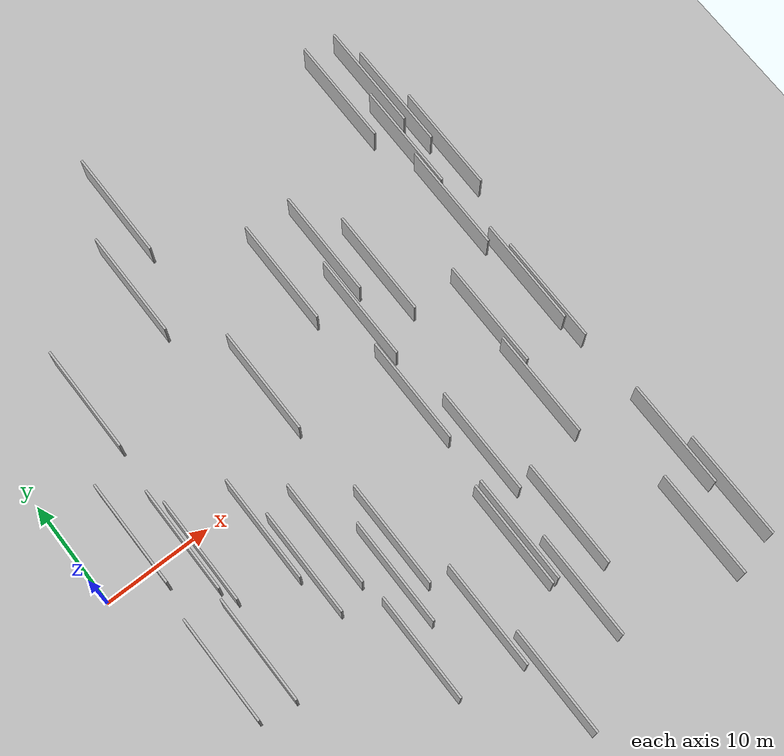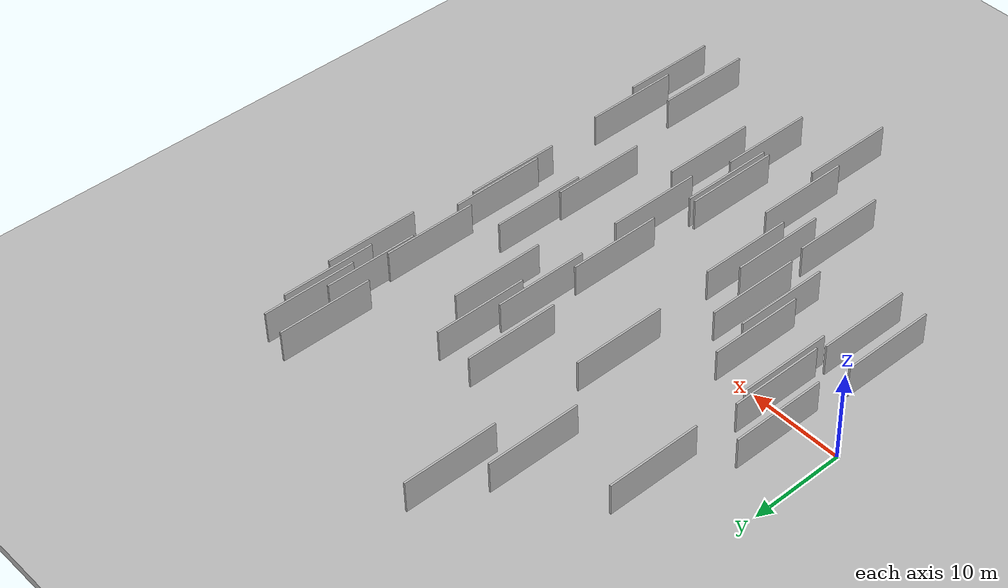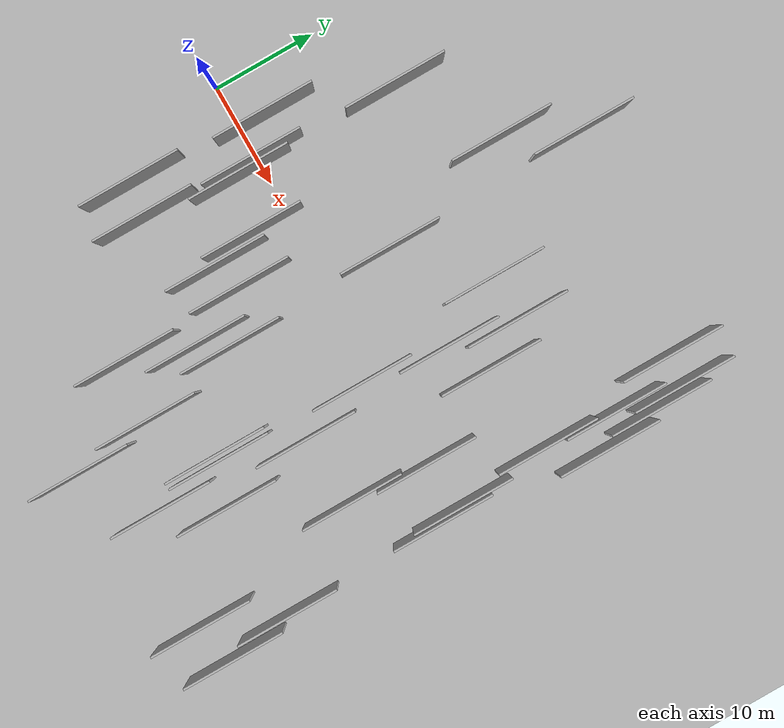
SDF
<?xml version="1.0" encoding="utf-8"?>

<sdf version="1.6">

   <world name="default">

      <gui fullscreen="0">

         <camera name="user_camera">

            <pose>-15 0 4.57585 0 0 0</pose>

            <view_controller>orbit</view_controller>

         </camera>

      </gui>

      <scene>

         <sky>

           <clouds>

             <speed>12</speed>

           </clouds>

         </sky>

         <ambient>0.4 0.4 0.4 1</ambient>

         <background>0.7 0.7 0.7 1</background>

         <shadows>1</shadows>

      </scene>

      <gravity>0 0 -9.8066</gravity>

      <magnetic_field>6e-06 2.3e-05 -4.2e-05</magnetic_field>

      <physics default="0" name="default_physics" type="ode">

         <ode>

            <solver>

               <type>quick</type>

               <iters>10</iters>

               <sor>1.0</sor>

               <use_dynamic_moi_rescaling>0</use_dynamic_moi_rescaling>

            </solver>

            <constraints>

               <cfm>0</cfm>

               <erp>0.2</erp>

               <contact_max_correcting_vel>100</contact_max_correcting_vel>

               <contact_surface_layer>0.001</contact_surface_layer>

            </constraints>

         </ode>

         <max_step_size>0.004</max_step_size>

         <real_time_factor>1</real_time_factor>

         <real_time_update_rate>250</real_time_update_rate>

      </physics>

      <light name="sun" type="directional">

         <cast_shadows>1</cast_shadows>

         <pose>0 0 10 0 0 0</pose>

         <diffuse>0.8 0.8 0.8 1</diffuse>

         <specular>0.2 0.2 0.2 1</specular>

         <attenuation>

            <range>1000</range>

            <constant>0.9</constant>

            <linear>0.01</linear>

            <quadratic>0.001</quadratic>

         </attenuation>

         <direction>-0.5 0.1 -0.9</direction>

      </light>

      <include>

         <name>ground_plane_1</name>

         <uri>model://HANNAS_ground_plane</uri>

         <pose>0 0 0  0 0 0</pose>

      </include>

      <include>

         <name>ground_plane_2</name>

         <uri>model://HANNAS_ground_plane</uri>

         <pose>100 0 0  0 0 0</pose>

      </include>

      <model name="HANNAS_wall_1">

         <static>1</static>

         <pose frame="">30.7414 6.5558 0.0 0.000000 0.000000 1.570796</pose>

         <link name="link">

            <pose frame="">0 0 2.00 0 0 0</pose>

            <collision name="collision">

               <geometry>

                  <box>

                     <size>10.00 0.2 4.00</size>

                  </box>

               </geometry>

               <max_contacts>10</max_contacts>

               <surface>

                  <contact>

                     <ode/>

                  </contact>

                  <bounce/>

                  <friction>

                     <torsional>

                        <ode/>

                     </torsional>

                     <ode/>

                  </friction>

               </surface>

            </collision>

            <visual name="visual">

               <cast_shadows>0</cast_shadows>

               <geometry>

                  <box>

                     <size>10.00 0.2 4.00</size>

                  </box>

               </geometry>

               <material>

                  <script>

                     <uri>model://HANNAS_wall/materials/scripts</uri>

                     <uri>model://HANNAS_wall/materials/textures</uri>

                     <name>vrc/HANNAS_wall</name>

                  </script>

               </material>

            </visual>

            <self_collide>0</self_collide>

            <enable_wind>0</enable_wind>

            <kinematic>0</kinematic>

         </link>

      </model>

      <model name="HANNAS_wall_2">

         <static>1</static>

         <pose frame="">17.5205 -18.7293 0.0 0.000000 0.000000 1.570796</pose>

         <link name="link">

            <pose frame="">0 0 2.00 0 0 0</pose>

            <collision name="collision">

               <geometry>

                  <box>

                     <size>10.00 0.2 4.00</size>

                  </box>

               </geometry>

               <max_contacts>10</max_contacts>

               <surface>

                  <contact>

                     <ode/>

                  </contact>

                  <bounce/>

                  <friction>

                     <torsional>

                        <ode/>

                     </torsional>

                     <ode/>

                  </friction>

               </surface>

            </collision>

            <visual name="visual">

               <cast_shadows>0</cast_shadows>

               <geometry>

                  <box>

                     <size>10.00 0.2 4.00</size>

                  </box>

               </geometry>

               <material>

                  <script>

                     <uri>model://HANNAS_wall/materials/scripts</uri>

                     <uri>model://HANNAS_wall/materials/textures</uri>

                     <name>vrc/HANNAS_wall</name>

                  </script>

               </material>

            </visual>

            <self_collide>0</self_collide>

            <enable_wind>0</enable_wind>

            <kinematic>0</kinematic>

         </link>

      </model>

      <model name="HANNAS_wall_3">

         <static>1</static>

         <pose frame="">43.6340 0.5578 0.0 0.000000 0.000000 1.570796</pose>

         <link name="link">

            <pose frame="">0 0 2.00 0 0 0</pose>

            <collision name="collision">

               <geometry>

                  <box>

                     <size>10.00 0.2 4.00</size>

                  </box>

               </geometry>

               <max_contacts>10</max_contacts>

               <surface>

                  <contact>

                     <ode/>

                  </contact>

                  <bounce/>

                  <friction>

                     <torsional>

                        <ode/>

                     </torsional>

                     <ode/>

                  </friction>

               </surface>

            </collision>

            <visual name="visual">

               <cast_shadows>0</cast_shadows>

               <geometry>

                  <box>

                     <size>10.00 0.2 4.00</size>

                  </box>

               </geometry>

               <material>

                  <script>

                     <uri>model://HANNAS_wall/materials/scripts</uri>

                     <uri>model://HANNAS_wall/materials/textures</uri>

                     <name>vrc/HANNAS_wall</name>

                  </script>

               </material>

            </visual>

            <self_collide>0</self_collide>

            <enable_wind>0</enable_wind>

            <kinematic>0</kinematic>

         </link>

      </model>

      <model name="HANNAS_wall_4">

         <static>1</static>

         <pose frame="">44.0097 -1.6854 0.0 0.000000 0.000000 1.570796</pose>

         <link name="link">

            <pose frame="">0 0 2.00 0 0 0</pose>

            <collision name="collision">

               <geometry>

                  <box>

                     <size>10.00 0.2 4.00</size>

                  </box>

               </geometry>

               <max_contacts>10</max_contacts>

               <surface>

                  <contact>

                     <ode/>

                  </contact>

                  <bounce/>

                  <friction>

                     <torsional>

                        <ode/>

                     </torsional>

                     <ode/>

                  </friction>

               </surface>

            </collision>

            <visual name="visual">

               <cast_shadows>0</cast_shadows>

               <geometry>

                  <box>

                     <size>10.00 0.2 4.00</size>

                  </box>

               </geometry>

               <material>

                  <script>

                     <uri>model://HANNAS_wall/materials/scripts</uri>

                     <uri>model://HANNAS_wall/materials/textures</uri>

                     <name>vrc/HANNAS_wall</name>

                  </script>

               </material>

            </visual>

            <self_collide>0</self_collide>

            <enable_wind>0</enable_wind>

            <kinematic>0</kinematic>

         </link>

      </model>

      <model name="HANNAS_wall_5">

         <static>1</static>

         <pose frame="">43.1147 16.3362 0.0 0.000000 0.000000 1.570796</pose>

         <link name="link">

            <pose frame="">0 0 2.00 0 0 0</pose>

            <collision name="collision">

               <geometry>

                  <box>

                     <size>10.00 0.2 4.00</size>

                  </box>

               </geometry>

               <max_contacts>10</max_contacts>

               <surface>

                  <contact>

                     <ode/>

                  </contact>

                  <bounce/>

                  <friction>

                     <torsional>

                        <ode/>

                     </torsional>

                     <ode/>

                  </friction>

               </surface>

            </collision>

            <visual name="visual">

               <cast_shadows>0</cast_shadows>

               <geometry>

                  <box>

                     <size>10.00 0.2 4.00</size>

                  </box>

               </geometry>

               <material>

                  <script>

                     <uri>model://HANNAS_wall/materials/scripts</uri>

                     <uri>model://HANNAS_wall/materials/textures</uri>

                     <name>vrc/HANNAS_wall</name>

                  </script>

               </material>

            </visual>

            <self_collide>0</self_collide>

            <enable_wind>0</enable_wind>

            <kinematic>0</kinematic>

         </link>

      </model>

      <model name="HANNAS_wall_6">

         <static>1</static>

         <pose frame="">24.2539 -27.2344 0.0 0.000000 0.000000 1.570796</pose>

         <link name="link">

            <pose frame="">0 0 2.00 0 0 0</pose>

            <collision name="collision">

               <geometry>

                  <box>

                     <size>10.00 0.2 4.00</size>

                  </box>

               </geometry>

               <max_contacts>10</max_contacts>

               <surface>

                  <contact>

                     <ode/>

                  </contact>

                  <bounce/>

                  <friction>

                     <torsional>

                        <ode/>

                     </torsional>

                     <ode/>

                  </friction>

               </surface>

            </collision>

            <visual name="visual">

               <cast_shadows>0</cast_shadows>

               <geometry>

                  <box>

                     <size>10.00 0.2 4.00</size>

                  </box>

               </geometry>

               <material>

                  <script>

                     <uri>model://HANNAS_wall/materials/scripts</uri>

                     <uri>model://HANNAS_wall/materials/textures</uri>

                     <name>vrc/HANNAS_wall</name>

                  </script>

               </material>

            </visual>

            <self_collide>0</self_collide>

            <enable_wind>0</enable_wind>

            <kinematic>0</kinematic>

         </link>

      </model>

      <model name="HANNAS_wall_7">

         <static>1</static>

         <pose frame="">13.3292 -3.4787 0.0 0.000000 0.000000 1.570796</pose>

         <link name="link">

            <pose frame="">0 0 2.00 0 0 0</pose>

            <collision name="collision">

               <geometry>

                  <box>

                     <size>10.00 0.2 4.00</size>

                  </box>

               </geometry>

               <max_contacts>10</max_contacts>

               <surface>

                  <contact>

                     <ode/>

                  </contact>

                  <bounce/>

                  <friction>

                     <torsional>

                        <ode/>

                     </torsional>

                     <ode/>

                  </friction>

               </surface>

            </collision>

            <visual name="visual">

               <cast_shadows>0</cast_shadows>

               <geometry>

                  <box>

                     <size>10.00 0.2 4.00</size>

                  </box>

               </geometry>

               <material>

                  <script>

                     <uri>model://HANNAS_wall/materials/scripts</uri>

                     <uri>model://HANNAS_wall/materials/textures</uri>

                     <name>vrc/HANNAS_wall</name>

                  </script>

               </material>

            </visual>

            <self_collide>0</self_collide>

            <enable_wind>0</enable_wind>

            <kinematic>0</kinematic>

         </link>

      </model>

      <model name="HANNAS_wall_8">

         <static>1</static>

         <pose frame="">41.1831 23.1403 0.0 0.000000 0.000000 1.570796</pose>

         <link name="link">

            <pose frame="">0 0 2.00 0 0 0</pose>

            <collision name="collision">

               <geometry>

                  <box>

                     <size>10.00 0.2 4.00</size>

                  </box>

               </geometry>

               <max_contacts>10</max_contacts>

               <surface>

                  <contact>

                     <ode/>

                  </contact>

                  <bounce/>

                  <friction>

                     <torsional>

                        <ode/>

                     </torsional>

                     <ode/>

                  </friction>

               </surface>

            </collision>

            <visual name="visual">

               <cast_shadows>0</cast_shadows>

               <geometry>

                  <box>

                     <size>10.00 0.2 4.00</size>

                  </box>

               </geometry>

               <material>

                  <script>

                     <uri>model://HANNAS_wall/materials/scripts</uri>

                     <uri>model://HANNAS_wall/materials/textures</uri>

                     <name>vrc/HANNAS_wall</name>

                  </script>

               </material>

            </visual>

            <self_collide>0</self_collide>

            <enable_wind>0</enable_wind>

            <kinematic>0</kinematic>

         </link>

      </model>

      <model name="HANNAS_wall_9">

         <static>1</static>

         <pose frame="">29.8172 -1.7241 0.0 0.000000 0.000000 1.570796</pose>

         <link name="link">

            <pose frame="">0 0 2.00 0 0 0</pose>

            <collision name="collision">

               <geometry>

                  <box>

                     <size>10.00 0.2 4.00</size>

                  </box>

               </geometry>

               <max_contacts>10</max_contacts>

               <surface>

                  <contact>

                     <ode/>

                  </contact>

                  <bounce/>

                  <friction>

                     <torsional>

                        <ode/>

                     </torsional>

                     <ode/>

                  </friction>

               </surface>

            </collision>

            <visual name="visual">

               <cast_shadows>0</cast_shadows>

               <geometry>

                  <box>

                     <size>10.00 0.2 4.00</size>

                  </box>

               </geometry>

               <material>

                  <script>

                     <uri>model://HANNAS_wall/materials/scripts</uri>

                     <uri>model://HANNAS_wall/materials/textures</uri>

                     <name>vrc/HANNAS_wall</name>

                  </script>

               </material>

            </visual>

            <self_collide>0</self_collide>

            <enable_wind>0</enable_wind>

            <kinematic>0</kinematic>

         </link>

      </model>

      <model name="HANNAS_wall_10">

         <static>1</static>

         <pose frame="">38.4385 -7.6919 0.0 0.000000 0.000000 1.570796</pose>

         <link name="link">

            <pose frame="">0 0 2.00 0 0 0</pose>

            <collision name="collision">

               <geometry>

                  <box>

                     <size>10.00 0.2 4.00</size>

                  </box>

               </geometry>

               <max_contacts>10</max_contacts>

               <surface>

                  <contact>

                     <ode/>

                  </contact>

                  <bounce/>

                  <friction>

                     <torsional>

                        <ode/>

                     </torsional>

                     <ode/>

                  </friction>

               </surface>

            </collision>

            <visual name="visual">

               <cast_shadows>0</cast_shadows>

               <geometry>

                  <box>

                     <size>10.00 0.2 4.00</size>

                  </box>

               </geometry>

               <material>

                  <script>

                     <uri>model://HANNAS_wall/materials/scripts</uri>

                     <uri>model://HANNAS_wall/materials/textures</uri>

                     <name>vrc/HANNAS_wall</name>

                  </script>

               </material>

            </visual>

            <self_collide>0</self_collide>

            <enable_wind>0</enable_wind>

            <kinematic>0</kinematic>

         </link>

      </model>

      <model name="HANNAS_wall_11">

         <static>1</static>

         <pose frame="">31.6705 -8.4956 0.0 0.000000 0.000000 1.570796</pose>

         <link name="link">

            <pose frame="">0 0 2.00 0 0 0</pose>

            <collision name="collision">

               <geometry>

                  <box>

                     <size>10.00 0.2 4.00</size>

                  </box>

               </geometry>

               <max_contacts>10</max_contacts>

               <surface>

                  <contact>

                     <ode/>

                  </contact>

                  <bounce/>

                  <friction>

                     <torsional>

                        <ode/>

                     </torsional>

                     <ode/>

                  </friction>

               </surface>

            </collision>

            <visual name="visual">

               <cast_shadows>0</cast_shadows>

               <geometry>

                  <box>

                     <size>10.00 0.2 4.00</size>

                  </box>

               </geometry>

               <material>

                  <script>

                     <uri>model://HANNAS_wall/materials/scripts</uri>

                     <uri>model://HANNAS_wall/materials/textures</uri>

                     <name>vrc/HANNAS_wall</name>

                  </script>

               </material>

            </visual>

            <self_collide>0</self_collide>

            <enable_wind>0</enable_wind>

            <kinematic>0</kinematic>

         </link>

      </model>

      <model name="HANNAS_wall_12">

         <static>1</static>

         <pose frame="">8.3221 -1.8800 0.0 0.000000 0.000000 1.570796</pose>

         <link name="link">

            <pose frame="">0 0 2.00 0 0 0</pose>

            <collision name="collision">

               <geometry>

                  <box>

                     <size>10.00 0.2 4.00</size>

                  </box>

               </geometry>

               <max_contacts>10</max_contacts>

               <surface>

                  <contact>

                     <ode/>

                  </contact>

                  <bounce/>

                  <friction>

                     <torsional>

                        <ode/>

                     </torsional>

                     <ode/>

                  </friction>

               </surface>

            </collision>

            <visual name="visual">

               <cast_shadows>0</cast_shadows>

               <geometry>

                  <box>

                     <size>10.00 0.2 4.00</size>

                  </box>

               </geometry>

               <material>

                  <script>

                     <uri>model://HANNAS_wall/materials/scripts</uri>

                     <uri>model://HANNAS_wall/materials/textures</uri>

                     <name>vrc/HANNAS_wall</name>

                  </script>

               </material>

            </visual>

            <self_collide>0</self_collide>

            <enable_wind>0</enable_wind>

            <kinematic>0</kinematic>

         </link>

      </model>

      <model name="HANNAS_wall_13">

         <static>1</static>

         <pose frame="">4.7229 2.6164 0.0 0.000000 0.000000 1.570796</pose>

         <link name="link">

            <pose frame="">0 0 2.00 0 0 0</pose>

            <collision name="collision">

               <geometry>

                  <box>

                     <size>10.00 0.2 4.00</size>

                  </box>

               </geometry>

               <max_contacts>10</max_contacts>

               <surface>

                  <contact>

                     <ode/>

                  </contact>

                  <bounce/>

                  <friction>

                     <torsional>

                        <ode/>

                     </torsional>

                     <ode/>

                  </friction>

               </surface>

            </collision>

            <visual name="visual">

               <cast_shadows>0</cast_shadows>

               <geometry>

                  <box>

                     <size>10.00 0.2 4.00</size>

                  </box>

               </geometry>

               <material>

                  <script>

                     <uri>model://HANNAS_wall/materials/scripts</uri>

                     <uri>model://HANNAS_wall/materials/textures</uri>

                     <name>vrc/HANNAS_wall</name>

                  </script>

               </material>

            </visual>

            <self_collide>0</self_collide>

            <enable_wind>0</enable_wind>

            <kinematic>0</kinematic>

         </link>

      </model>

      <model name="HANNAS_wall_14">

         <static>1</static>

         <pose frame="">44.4008 -17.6628 0.0 0.000000 0.000000 1.570796</pose>

         <link name="link">

            <pose frame="">0 0 2.00 0 0 0</pose>

            <collision name="collision">

               <geometry>

                  <box>

                     <size>10.00 0.2 4.00</size>

                  </box>

               </geometry>

               <max_contacts>10</max_contacts>

               <surface>

                  <contact>

                     <ode/>

                  </contact>

                  <bounce/>

                  <friction>

                     <torsional>

                        <ode/>

                     </torsional>

                     <ode/>

                  </friction>

               </surface>

            </collision>

            <visual name="visual">

               <cast_shadows>0</cast_shadows>

               <geometry>

                  <box>

                     <size>10.00 0.2 4.00</size>

                  </box>

               </geometry>

               <material>

                  <script>

                     <uri>model://HANNAS_wall/materials/scripts</uri>

                     <uri>model://HANNAS_wall/materials/textures</uri>

                     <name>vrc/HANNAS_wall</name>

                  </script>

               </material>

            </visual>

            <self_collide>0</self_collide>

            <enable_wind>0</enable_wind>

            <kinematic>0</kinematic>

         </link>

      </model>

      <model name="HANNAS_wall_15">

         <static>1</static>

         <pose frame="">20.0169 26.3299 0.0 0.000000 0.000000 1.570796</pose>

         <link name="link">

            <pose frame="">0 0 2.00 0 0 0</pose>

            <collision name="collision">

               <geometry>

                  <box>

                     <size>10.00 0.2 4.00</size>

                  </box>

               </geometry>

               <max_contacts>10</max_contacts>

               <surface>

                  <contact>

                     <ode/>

                  </contact>

                  <bounce/>

                  <friction>

                     <torsional>

                        <ode/>

                     </torsional>

                     <ode/>

                  </friction>

               </surface>

            </collision>

            <visual name="visual">

               <cast_shadows>0</cast_shadows>

               <geometry>

                  <box>

                     <size>10.00 0.2 4.00</size>

                  </box>

               </geometry>

               <material>

                  <script>

                     <uri>model://HANNAS_wall/materials/scripts</uri>

                     <uri>model://HANNAS_wall/materials/textures</uri>

                     <name>vrc/HANNAS_wall</name>

                  </script>

               </material>

            </visual>

            <self_collide>0</self_collide>

            <enable_wind>0</enable_wind>

            <kinematic>0</kinematic>

         </link>

      </model>

      <model name="HANNAS_wall_16">

         <static>1</static>

         <pose frame="">31.7821 12.8897 0.0 0.000000 0.000000 1.570796</pose>

         <link name="link">

            <pose frame="">0 0 2.00 0 0 0</pose>

            <collision name="collision">

               <geometry>

                  <box>

                     <size>10.00 0.2 4.00</size>

                  </box>

               </geometry>

               <max_contacts>10</max_contacts>

               <surface>

                  <contact>

                     <ode/>

                  </contact>

                  <bounce/>

                  <friction>

                     <torsional>

                        <ode/>

                     </torsional>

                     <ode/>

                  </friction>

               </surface>

            </collision>

            <visual name="visual">

               <cast_shadows>0</cast_shadows>

               <geometry>

                  <box>

                     <size>10.00 0.2 4.00</size>

                  </box>

               </geometry>

               <material>

                  <script>

                     <uri>model://HANNAS_wall/materials/scripts</uri>

                     <uri>model://HANNAS_wall/materials/textures</uri>

                     <name>vrc/HANNAS_wall</name>

                  </script>

               </material>

            </visual>

            <self_collide>0</self_collide>

            <enable_wind>0</enable_wind>

            <kinematic>0</kinematic>

         </link>

      </model>

      <model name="HANNAS_wall_17">

         <static>1</static>

         <pose frame="">7.7151 -0.2819 0.0 0.000000 0.000000 1.570796</pose>

         <link name="link">

            <pose frame="">0 0 2.00 0 0 0</pose>

            <collision name="collision">

               <geometry>

                  <box>

                     <size>10.00 0.2 4.00</size>

                  </box>

               </geometry>

               <max_contacts>10</max_contacts>

               <surface>

                  <contact>

                     <ode/>

                  </contact>

                  <bounce/>

                  <friction>

                     <torsional>

                        <ode/>

                     </torsional>

                     <ode/>

                  </friction>

               </surface>

            </collision>

            <visual name="visual">

               <cast_shadows>0</cast_shadows>

               <geometry>

                  <box>

                     <size>10.00 0.2 4.00</size>

                  </box>

               </geometry>

               <material>

                  <script>

                     <uri>model://HANNAS_wall/materials/scripts</uri>

                     <uri>model://HANNAS_wall/materials/textures</uri>

                     <name>vrc/HANNAS_wall</name>

                  </script>

               </material>

            </visual>

            <self_collide>0</self_collide>

            <enable_wind>0</enable_wind>

            <kinematic>0</kinematic>

         </link>

      </model>

      <model name="HANNAS_wall_18">

         <static>1</static>

         <pose frame="">42.7934 9.6397 0.0 0.000000 0.000000 1.570796</pose>

         <link name="link">

            <pose frame="">0 0 2.00 0 0 0</pose>

            <collision name="collision">

               <geometry>

                  <box>

                     <size>10.00 0.2 4.00</size>

                  </box>

               </geometry>

               <max_contacts>10</max_contacts>

               <surface>

                  <contact>

                     <ode/>

                  </contact>

                  <bounce/>

                  <friction>

                     <torsional>

                        <ode/>

                     </torsional>

                     <ode/>

                  </friction>

               </surface>

            </collision>

            <visual name="visual">

               <cast_shadows>0</cast_shadows>

               <geometry>

                  <box>

                     <size>10.00 0.2 4.00</size>

                  </box>

               </geometry>

               <material>

                  <script>

                     <uri>model://HANNAS_wall/materials/scripts</uri>

                     <uri>model://HANNAS_wall/materials/textures</uri>

                     <name>vrc/HANNAS_wall</name>

                  </script>

               </material>

            </visual>

            <self_collide>0</self_collide>

            <enable_wind>0</enable_wind>

            <kinematic>0</kinematic>

         </link>

      </model>

      <model name="HANNAS_wall_19">

         <static>1</static>

         <pose frame="">21.2046 -10.1456 0.0 0.000000 0.000000 1.570796</pose>

         <link name="link">

            <pose frame="">0 0 2.00 0 0 0</pose>

            <collision name="collision">

               <geometry>

                  <box>

                     <size>10.00 0.2 4.00</size>

                  </box>

               </geometry>

               <max_contacts>10</max_contacts>

               <surface>

                  <contact>

                     <ode/>

                  </contact>

                  <bounce/>

                  <friction>

                     <torsional>

                        <ode/>

                     </torsional>

                     <ode/>

                  </friction>

               </surface>

            </collision>

            <visual name="visual">

               <cast_shadows>0</cast_shadows>

               <geometry>

                  <box>

                     <size>10.00 0.2 4.00</size>

                  </box>

               </geometry>

               <material>

                  <script>

                     <uri>model://HANNAS_wall/materials/scripts</uri>

                     <uri>model://HANNAS_wall/materials/textures</uri>

                     <name>vrc/HANNAS_wall</name>

                  </script>

               </material>

            </visual>

            <self_collide>0</self_collide>

            <enable_wind>0</enable_wind>

            <kinematic>0</kinematic>

         </link>

      </model>

      <model name="HANNAS_wall_20">

         <static>1</static>

         <pose frame="">45.6466 14.2468 0.0 0.000000 0.000000 1.570796</pose>

         <link name="link">

            <pose frame="">0 0 2.00 0 0 0</pose>

            <collision name="collision">

               <geometry>

                  <box>

                     <size>10.00 0.2 4.00</size>

                  </box>

               </geometry>

               <max_contacts>10</max_contacts>

               <surface>

                  <contact>

                     <ode/>

                  </contact>

                  <bounce/>

                  <friction>

                     <torsional>

                        <ode/>

                     </torsional>

                     <ode/>

                  </friction>

               </surface>

            </collision>

            <visual name="visual">

               <cast_shadows>0</cast_shadows>

               <geometry>

                  <box>

                     <size>10.00 0.2 4.00</size>

                  </box>

               </geometry>

               <material>

                  <script>

                     <uri>model://HANNAS_wall/materials/scripts</uri>

                     <uri>model://HANNAS_wall/materials/textures</uri>

                     <name>vrc/HANNAS_wall</name>

                  </script>

               </material>

            </visual>

            <self_collide>0</self_collide>

            <enable_wind>0</enable_wind>

            <kinematic>0</kinematic>

         </link>

      </model>

      <model name="HANNAS_wall_21">

         <static>1</static>

         <pose frame="">16.9990 -6.8213 0.0 0.000000 0.000000 1.570796</pose>

         <link name="link">

            <pose frame="">0 0 2.00 0 0 0</pose>

            <collision name="collision">

               <geometry>

                  <box>

                     <size>10.00 0.2 4.00</size>

                  </box>

               </geometry>

               <max_contacts>10</max_contacts>

               <surface>

                  <contact>

                     <ode/>

                  </contact>

                  <bounce/>

                  <friction>

                     <torsional>

                        <ode/>

                     </torsional>

                     <ode/>

                  </friction>

               </surface>

            </collision>

            <visual name="visual">

               <cast_shadows>0</cast_shadows>

               <geometry>

                  <box>

                     <size>10.00 0.2 4.00</size>

                  </box>

               </geometry>

               <material>

                  <script>

                     <uri>model://HANNAS_wall/materials/scripts</uri>

                     <uri>model://HANNAS_wall/materials/textures</uri>

                     <name>vrc/HANNAS_wall</name>

                  </script>

               </material>

            </visual>

            <self_collide>0</self_collide>

            <enable_wind>0</enable_wind>

            <kinematic>0</kinematic>

         </link>

      </model>

      <model name="HANNAS_wall_22">

         <static>1</static>

         <pose frame="">27.4420 13.0119 0.0 0.000000 0.000000 1.570796</pose>

         <link name="link">

            <pose frame="">0 0 2.00 0 0 0</pose>

            <collision name="collision">

               <geometry>

                  <box>

                     <size>10.00 0.2 4.00</size>

                  </box>

               </geometry>

               <max_contacts>10</max_contacts>

               <surface>

                  <contact>

                     <ode/>

                  </contact>

                  <bounce/>

                  <friction>

                     <torsional>

                        <ode/>

                     </torsional>

                     <ode/>

                  </friction>

               </surface>

            </collision>

            <visual name="visual">

               <cast_shadows>0</cast_shadows>

               <geometry>

                  <box>

                     <size>10.00 0.2 4.00</size>

                  </box>

               </geometry>

               <material>

                  <script>

                     <uri>model://HANNAS_wall/materials/scripts</uri>

                     <uri>model://HANNAS_wall/materials/textures</uri>

                     <name>vrc/HANNAS_wall</name>

                  </script>

               </material>

            </visual>

            <self_collide>0</self_collide>

            <enable_wind>0</enable_wind>

            <kinematic>0</kinematic>

         </link>

      </model>

      <model name="HANNAS_wall_23">

         <static>1</static>

         <pose frame="">20.6279 6.3645 0.0 0.000000 0.000000 1.570796</pose>

         <link name="link">

            <pose frame="">0 0 2.00 0 0 0</pose>

            <collision name="collision">

               <geometry>

                  <box>

                     <size>10.00 0.2 4.00</size>

                  </box>

               </geometry>

               <max_contacts>10</max_contacts>

               <surface>

                  <contact>

                     <ode/>

                  </contact>

                  <bounce/>

                  <friction>

                     <torsional>

                        <ode/>

                     </torsional>

                     <ode/>

                  </friction>

               </surface>

            </collision>

            <visual name="visual">

               <cast_shadows>0</cast_shadows>

               <geometry>

                  <box>

                     <size>10.00 0.2 4.00</size>

                  </box>

               </geometry>

               <material>

                  <script>

                     <uri>model://HANNAS_wall/materials/scripts</uri>

                     <uri>model://HANNAS_wall/materials/textures</uri>

                     <name>vrc/HANNAS_wall</name>

                  </script>

               </material>

            </visual>

            <self_collide>0</self_collide>

            <enable_wind>0</enable_wind>

            <kinematic>0</kinematic>

         </link>

      </model>

      <model name="HANNAS_wall_24">

         <static>1</static>

         <pose frame="">44.7964 19.9449 0.0 0.000000 0.000000 1.570796</pose>

         <link name="link">

            <pose frame="">0 0 2.00 0 0 0</pose>

            <collision name="collision">

               <geometry>

                  <box>

                     <size>10.00 0.2 4.00</size>

                  </box>

               </geometry>

               <max_contacts>10</max_contacts>

               <surface>

                  <contact>

                     <ode/>

                  </contact>

                  <bounce/>

                  <friction>

                     <torsional>

                        <ode/>

                     </torsional>

                     <ode/>

                  </friction>

               </surface>

            </collision>

            <visual name="visual">

               <cast_shadows>0</cast_shadows>

               <geometry>

                  <box>

                     <size>10.00 0.2 4.00</size>

                  </box>

               </geometry>

               <material>

                  <script>

                     <uri>model://HANNAS_wall/materials/scripts</uri>

                     <uri>model://HANNAS_wall/materials/textures</uri>

                     <name>vrc/HANNAS_wall</name>

                  </script>

               </material>

            </visual>

            <self_collide>0</self_collide>

            <enable_wind>0</enable_wind>

            <kinematic>0</kinematic>

         </link>

      </model>

      <model name="HANNAS_wall_25">

         <static>1</static>

         <pose frame="">19.5503 -12.7050 0.0 0.000000 0.000000 1.570796</pose>

         <link name="link">

            <pose frame="">0 0 2.00 0 0 0</pose>

            <collision name="collision">

               <geometry>

                  <box>

                     <size>10.00 0.2 4.00</size>

                  </box>

               </geometry>

               <max_contacts>10</max_contacts>

               <surface>

                  <contact>

                     <ode/>

                  </contact>

                  <bounce/>

                  <friction>

                     <torsional>

                        <ode/>

                     </torsional>

                     <ode/>

                  </friction>

               </surface>

            </collision>

            <visual name="visual">

               <cast_shadows>0</cast_shadows>

               <geometry>

                  <box>

                     <size>10.00 0.2 4.00</size>

                  </box>

               </geometry>

               <material>

                  <script>

                     <uri>model://HANNAS_wall/materials/scripts</uri>

                     <uri>model://HANNAS_wall/materials/textures</uri>

                     <name>vrc/HANNAS_wall</name>

                  </script>

               </material>

            </visual>

            <self_collide>0</self_collide>

            <enable_wind>0</enable_wind>

            <kinematic>0</kinematic>

         </link>

      </model>

      <model name="HANNAS_wall_26">

         <static>1</static>

         <pose frame="">38.8819 -0.4343 0.0 0.000000 0.000000 1.570796</pose>

         <link name="link">

            <pose frame="">0 0 2.00 0 0 0</pose>

            <collision name="collision">

               <geometry>

                  <box>

                     <size>10.00 0.2 4.00</size>

                  </box>

               </geometry>

               <max_contacts>10</max_contacts>

               <surface>

                  <contact>

                     <ode/>

                  </contact>

                  <bounce/>

                  <friction>

                     <torsional>

                        <ode/>

                     </torsional>

                     <ode/>

                  </friction>

               </surface>

            </collision>

            <visual name="visual">

               <cast_shadows>0</cast_shadows>

               <geometry>

                  <box>

                     <size>10.00 0.2 4.00</size>

                  </box>

               </geometry>

               <material>

                  <script>

                     <uri>model://HANNAS_wall/materials/scripts</uri>

                     <uri>model://HANNAS_wall/materials/textures</uri>

                     <name>vrc/HANNAS_wall</name>

                  </script>

               </material>

            </visual>

            <self_collide>0</self_collide>

            <enable_wind>0</enable_wind>

            <kinematic>0</kinematic>

         </link>

      </model>

      <model name="HANNAS_wall_27">

         <static>1</static>

         <pose frame="">23.2420 -19.8667 0.0 0.000000 0.000000 1.570796</pose>

         <link name="link">

            <pose frame="">0 0 2.00 0 0 0</pose>

            <collision name="collision">

               <geometry>

                  <box>

                     <size>10.00 0.2 4.00</size>

                  </box>

               </geometry>

               <max_contacts>10</max_contacts>

               <surface>

                  <contact>

                     <ode/>

                  </contact>

                  <bounce/>

                  <friction>

                     <torsional>

                        <ode/>

                     </torsional>

                     <ode/>

                  </friction>

               </surface>

            </collision>

            <visual name="visual">

               <cast_shadows>0</cast_shadows>

               <geometry>

                  <box>

                     <size>10.00 0.2 4.00</size>

                  </box>

               </geometry>

               <material>

                  <script>

                     <uri>model://HANNAS_wall/materials/scripts</uri>

                     <uri>model://HANNAS_wall/materials/textures</uri>

                     <name>vrc/HANNAS_wall</name>

                  </script>

               </material>

            </visual>

            <self_collide>0</self_collide>

            <enable_wind>0</enable_wind>

            <kinematic>0</kinematic>

         </link>

      </model>

      <model name="HANNAS_wall_28">

         <static>1</static>

         <pose frame="">7.3125 -11.0342 0.0 0.000000 0.000000 1.570796</pose>

         <link name="link">

            <pose frame="">0 0 2.00 0 0 0</pose>

            <collision name="collision">

               <geometry>

                  <box>

                     <size>10.00 0.2 4.00</size>

                  </box>

               </geometry>

               <max_contacts>10</max_contacts>

               <surface>

                  <contact>

                     <ode/>

                  </contact>

                  <bounce/>

                  <friction>

                     <torsional>

                        <ode/>

                     </torsional>

                     <ode/>

                  </friction>

               </surface>

            </collision>

            <visual name="visual">

               <cast_shadows>0</cast_shadows>

               <geometry>

                  <box>

                     <size>10.00 0.2 4.00</size>

                  </box>

               </geometry>

               <material>

                  <script>

                     <uri>model://HANNAS_wall/materials/scripts</uri>

                     <uri>model://HANNAS_wall/materials/textures</uri>

                     <name>vrc/HANNAS_wall</name>

                  </script>

               </material>

            </visual>

            <self_collide>0</self_collide>

            <enable_wind>0</enable_wind>

            <kinematic>0</kinematic>

         </link>

      </model>

      <model name="HANNAS_wall_29">

         <static>1</static>

         <pose frame="">45.2885 -23.6494 0.0 0.000000 0.000000 1.570796</pose>

         <link name="link">

            <pose frame="">0 0 2.00 0 0 0</pose>

            <collision name="collision">

               <geometry>

                  <box>

                     <size>10.00 0.2 4.00</size>

                  </box>

               </geometry>

               <max_contacts>10</max_contacts>

               <surface>

                  <contact>

                     <ode/>

                  </contact>

                  <bounce/>

                  <friction>

                     <torsional>

                        <ode/>

                     </torsional>

                     <ode/>

                  </friction>

               </surface>

            </collision>

            <visual name="visual">

               <cast_shadows>0</cast_shadows>

               <geometry>

                  <box>

                     <size>10.00 0.2 4.00</size>

                  </box>

               </geometry>

               <material>

                  <script>

                     <uri>model://HANNAS_wall/materials/scripts</uri>

                     <uri>model://HANNAS_wall/materials/textures</uri>

                     <name>vrc/HANNAS_wall</name>

                  </script>

               </material>

            </visual>

            <self_collide>0</self_collide>

            <enable_wind>0</enable_wind>

            <kinematic>0</kinematic>

         </link>

      </model>

      <model name="HANNAS_wall_30">

         <static>1</static>

         <pose frame="">14.2884 -7.6811 0.0 0.000000 0.000000 1.570796</pose>

         <link name="link">

            <pose frame="">0 0 2.00 0 0 0</pose>

            <collision name="collision">

               <geometry>

                  <box>

                     <size>10.00 0.2 4.00</size>

                  </box>

               </geometry>

               <max_contacts>10</max_contacts>

               <surface>

                  <contact>

                     <ode/>

                  </contact>

                  <bounce/>

                  <friction>

                     <torsional>

                        <ode/>

                     </torsional>

                     <ode/>

                  </friction>

               </surface>

            </collision>

            <visual name="visual">

               <cast_shadows>0</cast_shadows>

               <geometry>

                  <box>

                     <size>10.00 0.2 4.00</size>

                  </box>

               </geometry>

               <material>

                  <script>

                     <uri>model://HANNAS_wall/materials/scripts</uri>

                     <uri>model://HANNAS_wall/materials/textures</uri>

                     <name>vrc/HANNAS_wall</name>

                  </script>

               </material>

            </visual>

            <self_collide>0</self_collide>

            <enable_wind>0</enable_wind>

            <kinematic>0</kinematic>

         </link>

      </model>

      <model name="HANNAS_wall_31">

         <static>1</static>

         <pose frame="">30.6637 -22.6045 0.0 0.000000 0.000000 1.570796</pose>

         <link name="link">

            <pose frame="">0 0 2.00 0 0 0</pose>

            <collision name="collision">

               <geometry>

                  <box>

                     <size>10.00 0.2 4.00</size>

                  </box>

               </geometry>

               <max_contacts>10</max_contacts>

               <surface>

                  <contact>

                     <ode/>

                  </contact>

                  <bounce/>

                  <friction>

                     <torsional>

                        <ode/>

                     </torsional>

                     <ode/>

                  </friction>

               </surface>

            </collision>

            <visual name="visual">

               <cast_shadows>0</cast_shadows>

               <geometry>

                  <box>

                     <size>10.00 0.2 4.00</size>

                  </box>

               </geometry>

               <material>

                  <script>

                     <uri>model://HANNAS_wall/materials/scripts</uri>

                     <uri>model://HANNAS_wall/materials/textures</uri>

                     <name>vrc/HANNAS_wall</name>

                  </script>

               </material>

            </visual>

            <self_collide>0</self_collide>

            <enable_wind>0</enable_wind>

            <kinematic>0</kinematic>

         </link>

      </model>

      <model name="HANNAS_wall_32">

         <static>1</static>

         <pose frame="">4.0614 -10.5460 0.0 0.000000 0.000000 1.570796</pose>

         <link name="link">

            <pose frame="">0 0 2.00 0 0 0</pose>

            <collision name="collision">

               <geometry>

                  <box>

                     <size>10.00 0.2 4.00</size>

                  </box>

               </geometry>

               <max_contacts>10</max_contacts>

               <surface>

                  <contact>

                     <ode/>

                  </contact>

                  <bounce/>

                  <friction>

                     <torsional>

                        <ode/>

                     </torsional>

                     <ode/>

                  </friction>

               </surface>

            </collision>

            <visual name="visual">

               <cast_shadows>0</cast_shadows>

               <geometry>

                  <box>

                     <size>10.00 0.2 4.00</size>

                  </box>

               </geometry>

               <material>

                  <script>

                     <uri>model://HANNAS_wall/materials/scripts</uri>

                     <uri>model://HANNAS_wall/materials/textures</uri>

                     <name>vrc/HANNAS_wall</name>

                  </script>

               </material>

            </visual>

            <self_collide>0</self_collide>

            <enable_wind>0</enable_wind>

            <kinematic>0</kinematic>

         </link>

      </model>

      <model name="HANNAS_wall_33">

         <static>1</static>

         <pose frame="">44.0309 22.6967 0.0 0.000000 0.000000 1.570796</pose>

         <link name="link">

            <pose frame="">0 0 2.00 0 0 0</pose>

            <collision name="collision">

               <geometry>

                  <box>

                     <size>10.00 0.2 4.00</size>

                  </box>

               </geometry>

               <max_contacts>10</max_contacts>

               <surface>

                  <contact>

                     <ode/>

                  </contact>

                  <bounce/>

                  <friction>

                     <torsional>

                        <ode/>

                     </torsional>

                     <ode/>

                  </friction>

               </surface>

            </collision>

            <visual name="visual">

               <cast_shadows>0</cast_shadows>

               <geometry>

                  <box>

                     <size>10.00 0.2 4.00</size>

                  </box>

               </geometry>

               <material>

                  <script>

                     <uri>model://HANNAS_wall/materials/scripts</uri>

                     <uri>model://HANNAS_wall/materials/textures</uri>

                     <name>vrc/HANNAS_wall</name>

                  </script>

               </material>

            </visual>

            <self_collide>0</self_collide>

            <enable_wind>0</enable_wind>

            <kinematic>0</kinematic>

         </link>

      </model>

      <model name="HANNAS_wall_34">

         <static>1</static>

         <pose frame="">34.3211 8.7201 0.0 0.000000 0.000000 1.570796</pose>

         <link name="link">

            <pose frame="">0 0 2.00 0 0 0</pose>

            <collision name="collision">

               <geometry>

                  <box>

                     <size>10.00 0.2 4.00</size>

                  </box>

               </geometry>

               <max_contacts>10</max_contacts>

               <surface>

                  <contact>

                     <ode/>

                  </contact>

                  <bounce/>

                  <friction>

                     <torsional>

                        <ode/>

                     </torsional>

                     <ode/>

                  </friction>

               </surface>

            </collision>

            <visual name="visual">

               <cast_shadows>0</cast_shadows>

               <geometry>

                  <box>

                     <size>10.00 0.2 4.00</size>

                  </box>

               </geometry>

               <material>

                  <script>

                     <uri>model://HANNAS_wall/materials/scripts</uri>

                     <uri>model://HANNAS_wall/materials/textures</uri>

                     <name>vrc/HANNAS_wall</name>

                  </script>

               </material>

            </visual>

            <self_collide>0</self_collide>

            <enable_wind>0</enable_wind>

            <kinematic>0</kinematic>

         </link>

      </model>

      <model name="HANNAS_wall_35">

         <static>1</static>

         <pose frame="">29.4973 -16.0376 0.0 0.000000 0.000000 1.570796</pose>

         <link name="link">

            <pose frame="">0 0 2.00 0 0 0</pose>

            <collision name="collision">

               <geometry>

                  <box>

                     <size>10.00 0.2 4.00</size>

                  </box>

               </geometry>

               <max_contacts>10</max_contacts>

               <surface>

                  <contact>

                     <ode/>

                  </contact>

                  <bounce/>

                  <friction>

                     <torsional>

                        <ode/>

                     </torsional>

                     <ode/>

                  </friction>

               </surface>

            </collision>

            <visual name="visual">

               <cast_shadows>0</cast_shadows>

               <geometry>

                  <box>

                     <size>10.00 0.2 4.00</size>

                  </box>

               </geometry>

               <material>

                  <script>

                     <uri>model://HANNAS_wall/materials/scripts</uri>

                     <uri>model://HANNAS_wall/materials/textures</uri>

                     <name>vrc/HANNAS_wall</name>

                  </script>

               </material>

            </visual>

            <self_collide>0</self_collide>

            <enable_wind>0</enable_wind>

            <kinematic>0</kinematic>

         </link>

      </model>

      <model name="HANNAS_wall_36">

         <static>1</static>

         <pose frame="">33.4327 -17.5006 0.0 0.000000 0.000000 1.570796</pose>

         <link name="link">

            <pose frame="">0 0 2.00 0 0 0</pose>

            <collision name="collision">

               <geometry>

                  <box>

                     <size>10.00 0.2 4.00</size>

                  </box>

               </geometry>

               <max_contacts>10</max_contacts>

               <surface>

                  <contact>

                     <ode/>

                  </contact>

                  <bounce/>

                  <friction>

                     <torsional>

                        <ode/>

                     </torsional>

                     <ode/>

                  </friction>

               </surface>

            </collision>

            <visual name="visual">

               <cast_shadows>0</cast_shadows>

               <geometry>

                  <box>

                     <size>10.00 0.2 4.00</size>

                  </box>

               </geometry>

               <material>

                  <script>

                     <uri>model://HANNAS_wall/materials/scripts</uri>

                     <uri>model://HANNAS_wall/materials/textures</uri>

                     <name>vrc/HANNAS_wall</name>

                  </script>

               </material>

            </visual>

            <self_collide>0</self_collide>

            <enable_wind>0</enable_wind>

            <kinematic>0</kinematic>

         </link>

      </model>

      <model name="HANNAS_wall_37">

         <static>1</static>

         <pose frame="">41.4334 -24.7458 0.0 0.000000 0.000000 1.570796</pose>

         <link name="link">

            <pose frame="">0 0 2.00 0 0 0</pose>

            <collision name="collision">

               <geometry>

                  <box>

                     <size>10.00 0.2 4.00</size>

                  </box>

               </geometry>

               <max_contacts>10</max_contacts>

               <surface>

                  <contact>

                     <ode/>

                  </contact>

                  <bounce/>

                  <friction>

                     <torsional>

                        <ode/>

                     </torsional>

                     <ode/>

                  </friction>

               </surface>

            </collision>

            <visual name="visual">

               <cast_shadows>0</cast_shadows>

               <geometry>

                  <box>

                     <size>10.00 0.2 4.00</size>

                  </box>

               </geometry>

               <material>

                  <script>

                     <uri>model://HANNAS_wall/materials/scripts</uri>

                     <uri>model://HANNAS_wall/materials/textures</uri>

                     <name>vrc/HANNAS_wall</name>

                  </script>

               </material>

            </visual>

            <self_collide>0</self_collide>

            <enable_wind>0</enable_wind>

            <kinematic>0</kinematic>

         </link>

      </model>

      <model name="HANNAS_wall_38">

         <static>1</static>

         <pose frame="">16.8904 19.7958 0.0 0.000000 0.000000 1.570796</pose>

         <link name="link">

            <pose frame="">0 0 2.00 0 0 0</pose>

            <collision name="collision">

               <geometry>

                  <box>

                     <size>10.00 0.2 4.00</size>

                  </box>

               </geometry>

               <max_contacts>10</max_contacts>

               <surface>

                  <contact>

                     <ode/>

                  </contact>

                  <bounce/>

                  <friction>

                     <torsional>

                        <ode/>

                     </torsional>

                     <ode/>

                  </friction>

               </surface>

            </collision>

            <visual name="visual">

               <cast_shadows>0</cast_shadows>

               <geometry>

                  <box>

                     <size>10.00 0.2 4.00</size>

                  </box>

               </geometry>

               <material>

                  <script>

                     <uri>model://HANNAS_wall/materials/scripts</uri>

                     <uri>model://HANNAS_wall/materials/textures</uri>

                     <name>vrc/HANNAS_wall</name>

                  </script>

               </material>

            </visual>

            <self_collide>0</self_collide>

            <enable_wind>0</enable_wind>

            <kinematic>0</kinematic>

         </link>

      </model>

      <model name="HANNAS_wall_39">

         <static>1</static>

         <pose frame="">8.2273 14.0025 0.0 0.000000 0.000000 1.570796</pose>

         <link name="link">

            <pose frame="">0 0 2.00 0 0 0</pose>

            <collision name="collision">

               <geometry>

                  <box>

                     <size>10.00 0.2 4.00</size>

                  </box>

               </geometry>

               <max_contacts>10</max_contacts>

               <surface>

                  <contact>

                     <ode/>

                  </contact>

                  <bounce/>

                  <friction>

                     <torsional>

                        <ode/>

                     </torsional>

                     <ode/>

                  </friction>

               </surface>

            </collision>

            <visual name="visual">

               <cast_shadows>0</cast_shadows>

               <geometry>

                  <box>

                     <size>10.00 0.2 4.00</size>

                  </box>

               </geometry>

               <material>

                  <script>

                     <uri>model://HANNAS_wall/materials/scripts</uri>

                     <uri>model://HANNAS_wall/materials/textures</uri>

                     <name>vrc/HANNAS_wall</name>

                  </script>

               </material>

            </visual>

            <self_collide>0</self_collide>

            <enable_wind>0</enable_wind>

            <kinematic>0</kinematic>

         </link>

      </model>

      <model name="HANNAS_wall_40">

         <static>1</static>

         <pose frame="">28.8999 -16.1061 0.0 0.000000 0.000000 1.570796</pose>

         <link name="link">

            <pose frame="">0 0 2.00 0 0 0</pose>

            <collision name="collision">

               <geometry>

                  <box>

                     <size>10.00 0.2 4.00</size>

                  </box>

               </geometry>

               <max_contacts>10</max_contacts>

               <surface>

                  <contact>

                     <ode/>

                  </contact>

                  <bounce/>

                  <friction>

                     <torsional>

                        <ode/>

                     </torsional>

                     <ode/>

                  </friction>

               </surface>

            </collision>

            <visual name="visual">

               <cast_shadows>0</cast_shadows>

               <geometry>

                  <box>

                     <size>10.00 0.2 4.00</size>

                  </box>

               </geometry>

               <material>

                  <script>

                     <uri>model://HANNAS_wall/materials/scripts</uri>

                     <uri>model://HANNAS_wall/materials/textures</uri>

                     <name>vrc/HANNAS_wall</name>

                  </script>

               </material>

            </visual>

            <self_collide>0</self_collide>

            <enable_wind>0</enable_wind>

            <kinematic>0</kinematic>

         </link>

      </model>

   </world>

</sdf>
